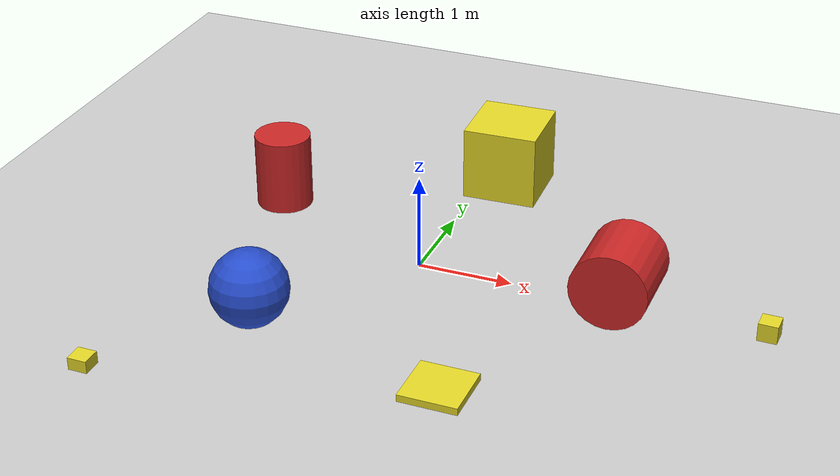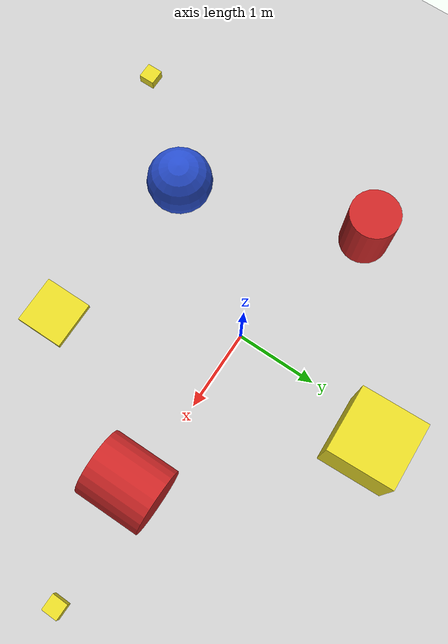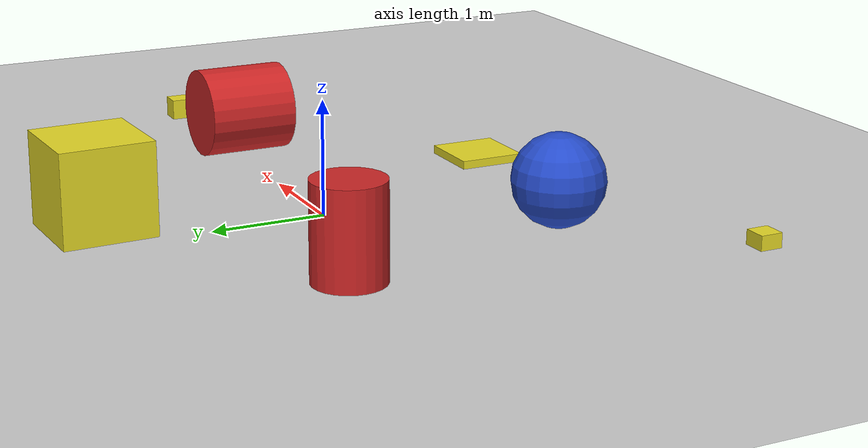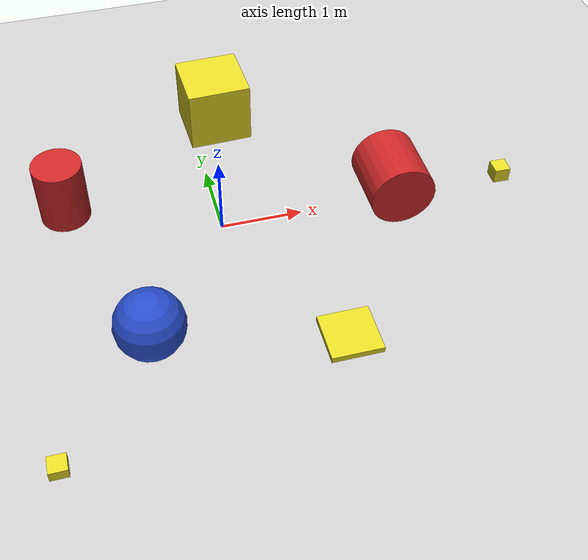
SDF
<sdf version="1.4">
 <world name="default">
  <light name="sun" type="directional">
   <pose>0 0 10 0 -0 0</pose>
   <diffuse>0.8 0.8 0.8 1</diffuse>
   <specular>0.2 0.2 0.2 1</specular>
   <attenuation>
    <range>1000</range>
    <constant>0.9</constant>
    <linear>0.01</linear>
    <quadratic>0.001</quadratic>
   </attenuation>
   <direction>-0.5 0.1 -0.9</direction>
  </light>
  <model name="ground_plane">
   <static>1</static>
   <link name="link">
    <collision name="collision">
     <geometry><plane><normal>0 0 1</normal><size>100 100</size></plane></geometry>
     <surface><friction><ode><mu>100</mu><mu2>50</mu2></ode></friction></surface>
    </collision>
    <visual name="visual">
     <cast_shadows>0</cast_shadows>
     <geometry><plane><normal>0 0 1</normal><size>100 100</size></plane></geometry>
     <material>
      <script><uri>file://media/materials/scripts/gazebo.material</uri><name>Gazebo/Grey</name></script>
     </material>
    </visual>
    <velocity_decay><linear>0</linear><angular>0</angular></velocity_decay>
   </link>
  </model>
  <physics type="ode">
   <max_step_size>0.001</max_step_size>
   <real_time_factor>1</real_time_factor>
   <real_time_update_rate>1000</real_time_update_rate>
   <gravity>0 0 -9.8</gravity>
  </physics>
  <scene><ambient>0.4 0.4 0.4 1</ambient><background>0.7 0.7 0.7 1</background><shadows>1</shadows></scene>
  <spherical_coordinates>
   <surface_model>EARTH_WGS84</surface_model>
   <latitude_deg>0</latitude_deg>
   <longitude_deg>0</longitude_deg>
   <elevation>0</elevation>
   <heading_deg>0</heading_deg>
  </spherical_coordinates>
  <model name="unit_cylinder_2">
   <pose>-1.81147 0.583056 0.499998 0 -0 0</pose>
   <link name="link">
    <inertial>
     <mass>1</mass>
     <inertia><ixx>1</ixx><ixy>0</ixy><ixz>0</ixz><iyy>1</iyy><iyz>0</iyz><izz>1</izz></inertia>
    </inertial>
    <collision name="collision">
     <geometry><cylinder><radius>0.3</radius><length>0.8</length></cylinder></geometry>
     <surface><friction><ode><mu>100000</mu><mu2>100000</mu2></ode></friction></surface>
    </collision>
    <visual name="visual">
     <geometry><cylinder><radius>0.3</radius><length>0.8</length></cylinder></geometry>
     <material>
      <script><uri>file://media/materials/scripts/gazebo.material</uri><name>Gazebo/Red</name></script>
     </material>
    </visual>
    <velocity_decay><linear>0</linear><angular>0</angular></velocity_decay>
   </link>
   <static>0</static>
  </model>
  <model name="unit_box_4">
   <pose>0.308066 1.88428 0.452807 0 -0 0.038837</pose>
   <link name="link">
    <inertial>
     <mass>1</mass>
     <inertia><ixx>1</ixx><ixy>0</ixy><ixz>0</ixz><iyy>1</iyy><iyz>0</iyz><izz>1</izz></inertia>
    </inertial>
    <collision name="collision">
     <geometry><box><size>0.8 0.8 0.8</size></box></geometry>
     <surface><friction><ode><mu>100000</mu><mu2>100000</mu2></ode></friction></surface>
    </collision>
    <visual name="visual">
     <geometry><box><size>0.8 0.8 0.8</size></box></geometry>
     <material>
      <script><uri>file://media/materials/scripts/gazebo.material</uri><name>Gazebo/Yellow</name></script>
     </material>
    </visual>
    <velocity_decay><linear>0</linear><angular>0</angular></velocity_decay>
   </link>
   <static>0</static>
  </model>
  <model name="unit_sphere_2_0">
   <pose>-1.11441 -1.61899 0.401965 0 -0 0</pose>
   <link name="link">
    <inertial>
     <mass>1</mass>
     <inertia><ixx>1</ixx><ixy>0</ixy><ixz>0</ixz><iyy>1</iyy><iyz>0</iyz><izz>1</izz></inertia>
    </inertial>
    <collision name="collision">
     <geometry><sphere><radius>0.4</radius></sphere></geometry>
     <surface><friction><ode><mu>100000</mu><mu2>100000</mu2></ode></friction></surface>
    </collision>
    <visual name="visual">
     <geometry><sphere><radius>0.4</radius></sphere></geometry>
     <material>
      <script><uri>file://media/materials/scripts/gazebo.material</uri><name>Gazebo/Blue</name></script>
     </material>
    </visual>
    <velocity_decay><linear>0</linear><angular>0</angular></velocity_decay>
   </link>
   <static>0</static>
  </model>
  <model name="unit_cylinder_1_0">
   <pose>2.13275 -0.080121 0.415962 -1.5708 0 0</pose>
   <link name="link">
    <inertial>
     <mass>1</mass>
     <inertia><ixx>1</ixx><ixy>0</ixy><ixz>0</ixz><iyy>1</iyy><iyz>0</iyz><izz>1</izz></inertia>
    </inertial>
    <collision name="collision">
     <geometry><cylinder><radius>0.4</radius><length>0.8</length></cylinder></geometry>
     <surface><friction><ode><mu>10000</mu><mu2>10000</mu2></ode></friction></surface>
    </collision>
    <visual name="visual">
     <geometry><cylinder><radius>0.4</radius><length>0.8</length></cylinder></geometry>
     <material>
      <script><uri>file://media/materials/scripts/gazebo.material</uri><name>Gazebo/Red</name></script>
     </material>
    </visual>
    <velocity_decay><linear>0</linear><angular>0</angular></velocity_decay>
   </link>
   <static>0</static>
  </model>
  <model name="unit_box_1_0">
   <pose>3.62944 0.005574 0.083216 1e-06 1e-06 -0.020368</pose>
   <link name="link">
    <inertial>
     <mass>1</mass>
     <inertia><ixx>1</ixx><ixy>0</ixy><ixz>0</ixz><iyy>1</iyy><iyz>0</iyz><izz>1</izz></inertia>
    </inertial>
    <collision name="collision">
     <geometry><box><size>0.2 0.2 0.2</size></box></geometry>
     <surface><friction><ode><mu>100000</mu><mu2>100000</mu2></ode></friction></surface>
    </collision>
    <visual name="visual">
     <geometry><box><size>0.2 0.2 0.2</size></box></geometry>
     <material>
      <script><uri>file://media/materials/scripts/gazebo.material</uri><name>Gazebo/Yellow</name></script>
     </material>
    </visual>
    <velocity_decay><linear>0</linear><angular>0</angular></velocity_decay>
   </link>
   <static>0</static>
  </model>
  <model name="unit_box_1">
   <pose>1 -2 0.01665 0 -1e-06 0</pose>
   <link name="link">
    <inertial>
     <mass>1</mass>
     <inertia><ixx>1</ixx><ixy>0</ixy><ixz>0</ixz><iyy>1</iyy><iyz>0</iyz><izz>1</izz></inertia>
    </inertial>
    <collision name="collision">
     <geometry><box><size>0.6 0.6 0.1</size></box></geometry>
     <surface><friction><ode><mu>100000</mu><mu2>100000</mu2></ode></friction></surface>
    </collision>
    <visual name="visual">
     <geometry><box><size>0.6 0.6 0.1</size></box></geometry>
     <material>
      <script><uri>file://media/materials/scripts/gazebo.material</uri><name>Gazebo/Yellow</name></script>
     </material>
    </visual>
    <velocity_decay><linear>0</linear><angular>0</angular></velocity_decay>
   </link>
   <static>0</static>
  </model>
  <model name="unit_box_2">
   <pose>-2.2463 -2.86234 0.022189 -2.2e-05 2e-06 -5.5e-05</pose>
   <link name="link">
    <inertial>
     <mass>1</mass>
     <inertia><ixx>1</ixx><ixy>0</ixy><ixz>0</ixz><iyy>1</iyy><iyz>0</iyz><izz>1</izz></inertia>
    </inertial>
    <collision name="collision">
     <geometry><box><size>0.2 0.2 0.2</size></box></geometry>
     <surface><friction><ode><mu>100000</mu><mu2>100000</mu2></ode></friction></surface>
    </collision>
    <visual name="visual">
     <geometry><box><size>0.2 0.2 0.2</size></box></geometry>
     <material>
      <script><uri>file://media/materials/scripts/gazebo.material</uri><name>Gazebo/Yellow</name></script>
     </material>
    </visual>
    <velocity_decay><linear>0</linear><angular>0</angular></velocity_decay>
   </link>
   <static>0</static>
  </model>
 </world>
</sdf>
